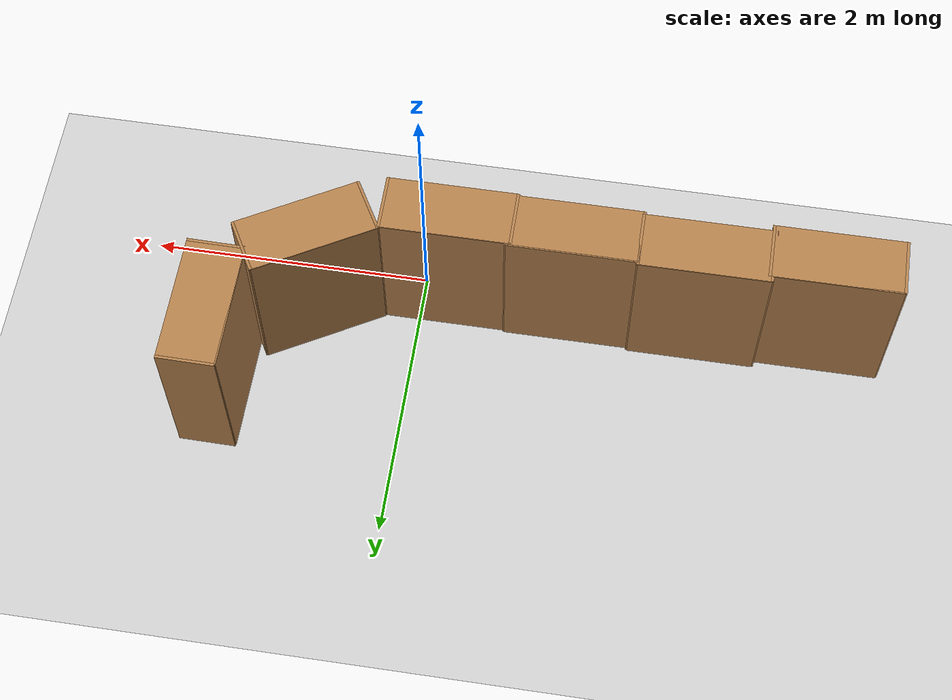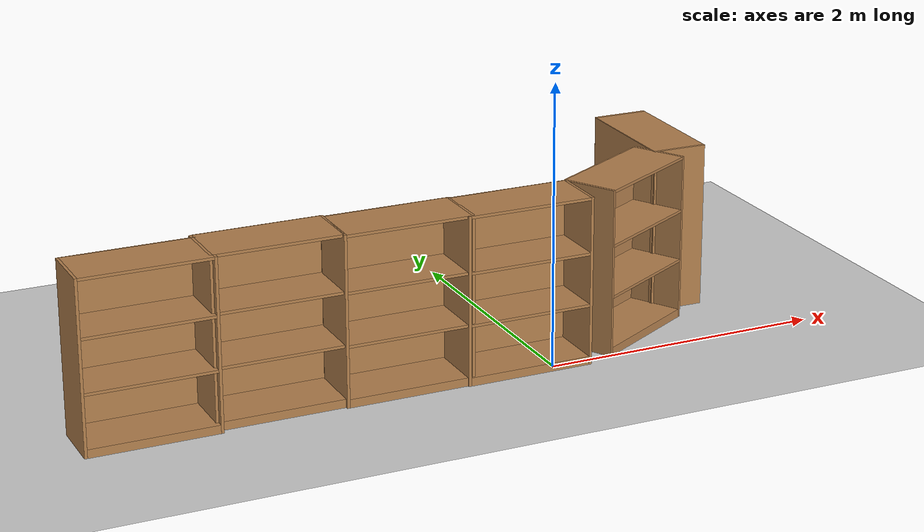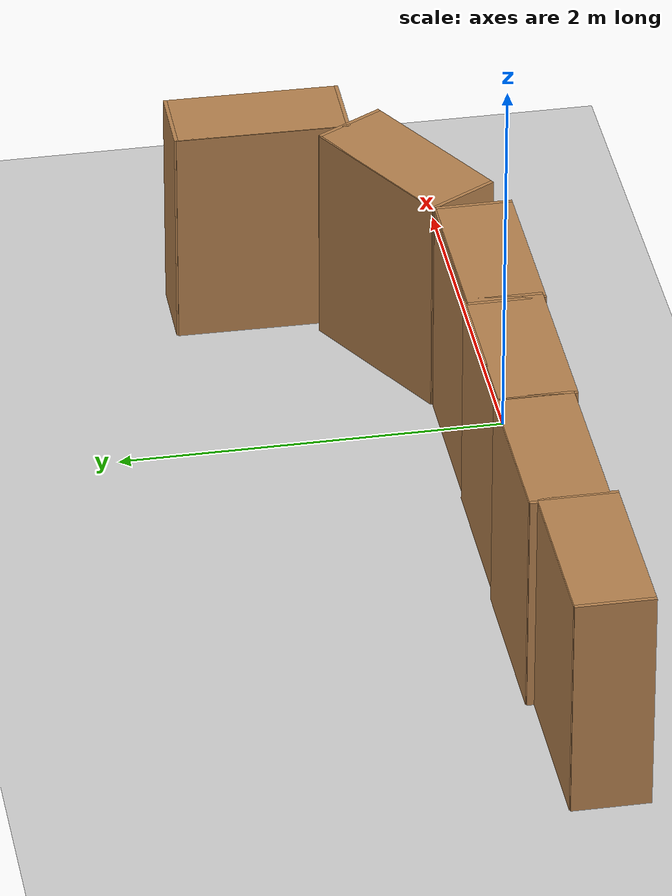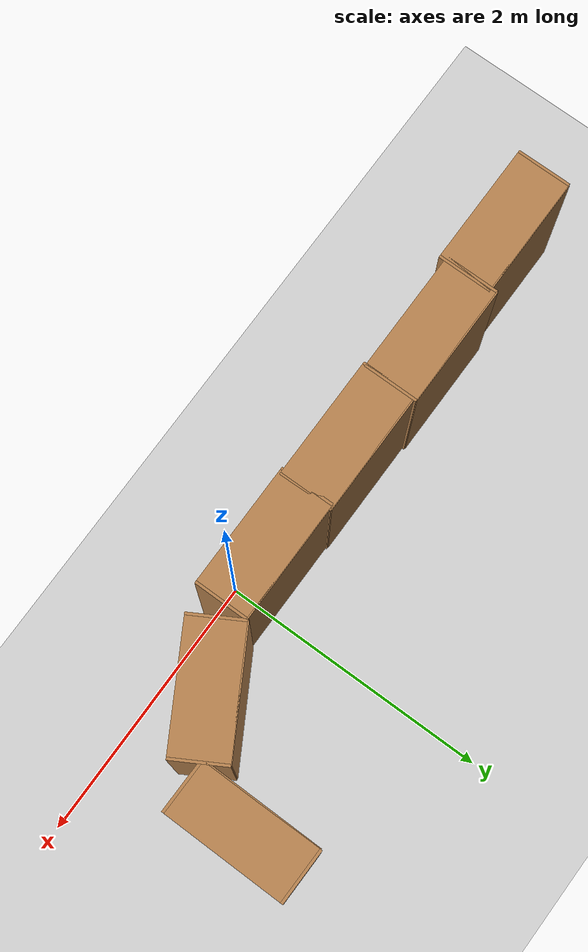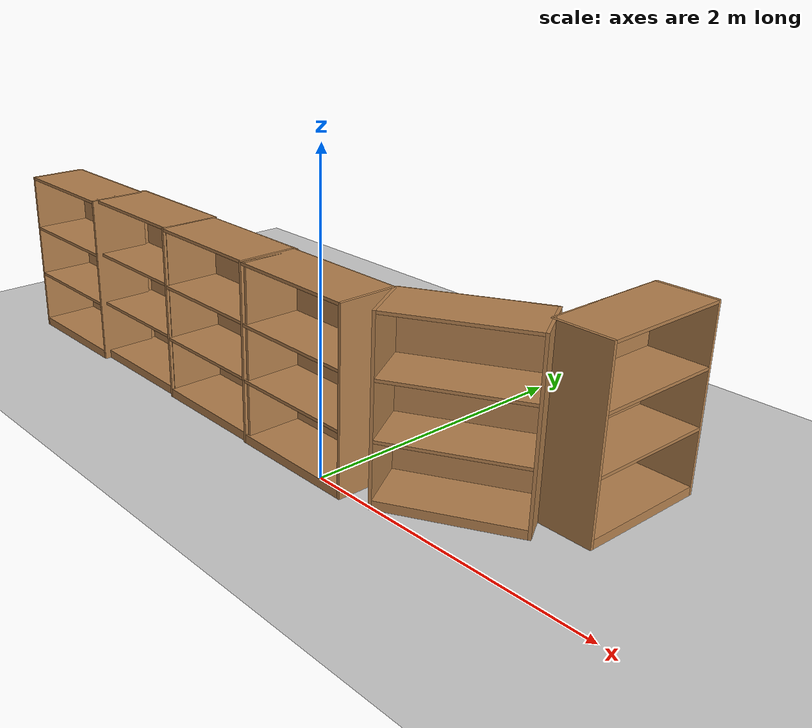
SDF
<sdf version="1.4">
 <world name="default">
  <model name="ground_plane">
   <static>1</static>
   <link name="link">
    <collision name="collision">
     <geometry><plane><normal>0 0 1</normal><size>100 100</size></plane></geometry>
     <surface><friction><ode><mu>100</mu><mu2>50</mu2></ode></friction></surface>
    </collision>
    <visual name="visual">
     <cast_shadows>0</cast_shadows>
     <geometry><plane><normal>0 0 1</normal><size>100 100</size></plane></geometry>
     <material>
      <script><uri>file://media/materials/scripts/gazebo.material</uri><name>Gazebo/Grey</name></script>
     </material>
    </visual>
    <velocity_decay><linear>0</linear><angular>0</angular></velocity_decay>
   </link>
  </model>
  <model name="bookshelf">
   <static>1</static>
   <link name="link">
    <inertial><mass>1</mass></inertial>
    <collision name="back">
     <pose>0 0.005 0.6 0 -0 0</pose>
     <geometry><box><size>0.9 0.01 1.2</size></box></geometry>
    </collision>
    <visual name="visual1">
     <pose>0 0.005 0.6 0 -0 0</pose>
     <geometry><box><size>0.9 0.01 1.2</size></box></geometry>
     <material>
      <script><uri>file://media/materials/scripts/gazebo.material</uri><name>Gazebo/Wood</name></script>
     </material>
    </visual>
    <collision name="left_side">
     <pose>0.45 -0.195 0.6 0 -0 0</pose>
     <geometry><box><size>0.02 0.4 1.2</size></box></geometry>
    </collision>
    <visual name="visual2">
     <pose>0.45 -0.195 0.6 0 -0 0</pose>
     <geometry><box><size>0.02 0.4 1.2</size></box></geometry>
     <material>
      <script><uri>file://media/materials/scripts/gazebo.material</uri><name>Gazebo/Wood</name></script>
     </material>
    </visual>
    <collision name="right_side">
     <pose>-0.45 -0.195 0.6 0 -0 0</pose>
     <geometry><box><size>0.02 0.4 1.2</size></box></geometry>
    </collision>
    <visual name="visual3">
     <pose>-0.45 -0.195 0.6 0 -0 0</pose>
     <geometry><box><size>0.02 0.4 1.2</size></box></geometry>
     <material>
      <script><uri>file://media/materials/scripts/gazebo.material</uri><name>Gazebo/Wood</name></script>
     </material>
    </visual>
    <collision name="bottom">
     <pose>0 -0.195 0.03 0 -0 0</pose>
     <geometry><box><size>0.88 0.4 0.06</size></box></geometry>
    </collision>
    <visual name="visual4">
     <pose>0 -0.195 0.03 0 -0 0</pose>
     <geometry><box><size>0.88 0.4 0.06</size></box></geometry>
     <material>
      <script><uri>file://media/materials/scripts/gazebo.material</uri><name>Gazebo/Wood</name></script>
     </material>
    </visual>
    <collision name="top">
     <pose>0 -0.195 1.19 0 -0 0</pose>
     <geometry><box><size>0.88 0.4 0.02</size></box></geometry>
    </collision>
    <visual name="visual5">
     <pose>0 -0.195 1.19 0 -0 0</pose>
     <geometry><box><size>0.88 0.4 0.02</size></box></geometry>
     <material>
      <script><uri>file://media/materials/scripts/gazebo.material</uri><name>Gazebo/Wood</name></script>
     </material>
    </visual>
    <collision name="low_shelf">
     <pose>0 -0.195 0.43 0 -0 0</pose>
     <geometry><box><size>0.88 0.4 0.02</size></box></geometry>
    </collision>
    <visual name="visual6">
     <pose>0 -0.195 0.43 0 -0 0</pose>
     <geometry><box><size>0.88 0.4 0.02</size></box></geometry>
     <material>
      <script><uri>file://media/materials/scripts/gazebo.material</uri><name>Gazebo/Wood</name></script>
     </material>
    </visual>
    <collision name="high_shelf">
     <pose>0 -0.195 0.8 0 -0 0</pose>
     <geometry><box><size>0.88 0.4 0.02</size></box></geometry>
    </collision>
    <visual name="visual7">
     <pose>0 -0.195 0.8 0 -0 0</pose>
     <geometry><box><size>0.88 0.4 0.02</size></box></geometry>
     <material>
      <script><uri>file://media/materials/scripts/gazebo.material</uri><name>Gazebo/Wood</name></script>
     </material>
    </visual>
    <velocity_decay><linear>0</linear><angular>0</angular></velocity_decay>
   </link>
   <pose>-2.84726 0.305303 0 0 -0 0</pose>
  </model>
  <model name="bookshelf_0">
   <static>1</static>
   <link name="link">
    <inertial><mass>1</mass></inertial>
    <collision name="back">
     <pose>0 0.005 0.6 0 -0 0</pose>
     <geometry><box><size>0.9 0.01 1.2</size></box></geometry>
    </collision>
    <visual name="visual1">
     <pose>0 0.005 0.6 0 -0 0</pose>
     <geometry><box><size>0.9 0.01 1.2</size></box></geometry>
     <material>
      <script><uri>file://media/materials/scripts/gazebo.material</uri><name>Gazebo/Wood</name></script>
     </material>
    </visual>
    <collision name="left_side">
     <pose>0.45 -0.195 0.6 0 -0 0</pose>
     <geometry><box><size>0.02 0.4 1.2</size></box></geometry>
    </collision>
    <visual name="visual2">
     <pose>0.45 -0.195 0.6 0 -0 0</pose>
     <geometry><box><size>0.02 0.4 1.2</size></box></geometry>
     <material>
      <script><uri>file://media/materials/scripts/gazebo.material</uri><name>Gazebo/Wood</name></script>
     </material>
    </visual>
    <collision name="right_side">
     <pose>-0.45 -0.195 0.6 0 -0 0</pose>
     <geometry><box><size>0.02 0.4 1.2</size></box></geometry>
    </collision>
    <visual name="visual3">
     <pose>-0.45 -0.195 0.6 0 -0 0</pose>
     <geometry><box><size>0.02 0.4 1.2</size></box></geometry>
     <material>
      <script><uri>file://media/materials/scripts/gazebo.material</uri><name>Gazebo/Wood</name></script>
     </material>
    </visual>
    <collision name="bottom">
     <pose>0 -0.195 0.03 0 -0 0</pose>
     <geometry><box><size>0.88 0.4 0.06</size></box></geometry>
    </collision>
    <visual name="visual4">
     <pose>0 -0.195 0.03 0 -0 0</pose>
     <geometry><box><size>0.88 0.4 0.06</size></box></geometry>
     <material>
      <script><uri>file://media/materials/scripts/gazebo.material</uri><name>Gazebo/Wood</name></script>
     </material>
    </visual>
    <collision name="top">
     <pose>0 -0.195 1.19 0 -0 0</pose>
     <geometry><box><size>0.88 0.4 0.02</size></box></geometry>
    </collision>
    <visual name="visual5">
     <pose>0 -0.195 1.19 0 -0 0</pose>
     <geometry><box><size>0.88 0.4 0.02</size></box></geometry>
     <material>
      <script><uri>file://media/materials/scripts/gazebo.material</uri><name>Gazebo/Wood</name></script>
     </material>
    </visual>
    <collision name="low_shelf">
     <pose>0 -0.195 0.43 0 -0 0</pose>
     <geometry><box><size>0.88 0.4 0.02</size></box></geometry>
    </collision>
    <visual name="visual6">
     <pose>0 -0.195 0.43 0 -0 0</pose>
     <geometry><box><size>0.88 0.4 0.02</size></box></geometry>
     <material>
      <script><uri>file://media/materials/scripts/gazebo.material</uri><name>Gazebo/Wood</name></script>
     </material>
    </visual>
    <collision name="high_shelf">
     <pose>0 -0.195 0.8 0 -0 0</pose>
     <geometry><box><size>0.88 0.4 0.02</size></box></geometry>
    </collision>
    <visual name="visual7">
     <pose>0 -0.195 0.8 0 -0 0</pose>
     <geometry><box><size>0.88 0.4 0.02</size></box></geometry>
     <material>
      <script><uri>file://media/materials/scripts/gazebo.material</uri><name>Gazebo/Wood</name></script>
     </material>
    </visual>
    <velocity_decay><linear>0</linear><angular>0</angular></velocity_decay>
   </link>
   <pose>-1.96662 0.347335 0 0 -0 0</pose>
  </model>
  <model name="bookshelf_1">
   <static>1</static>
   <link name="link">
    <inertial><mass>1</mass></inertial>
    <collision name="back">
     <pose>0 0.005 0.6 0 -0 0</pose>
     <geometry><box><size>0.9 0.01 1.2</size></box></geometry>
    </collision>
    <visual name="visual1">
     <pose>0 0.005 0.6 0 -0 0</pose>
     <geometry><box><size>0.9 0.01 1.2</size></box></geometry>
     <material>
      <script><uri>file://media/materials/scripts/gazebo.material</uri><name>Gazebo/Wood</name></script>
     </material>
    </visual>
    <collision name="left_side">
     <pose>0.45 -0.195 0.6 0 -0 0</pose>
     <geometry><box><size>0.02 0.4 1.2</size></box></geometry>
    </collision>
    <visual name="visual2">
     <pose>0.45 -0.195 0.6 0 -0 0</pose>
     <geometry><box><size>0.02 0.4 1.2</size></box></geometry>
     <material>
      <script><uri>file://media/materials/scripts/gazebo.material</uri><name>Gazebo/Wood</name></script>
     </material>
    </visual>
    <collision name="right_side">
     <pose>-0.45 -0.195 0.6 0 -0 0</pose>
     <geometry><box><size>0.02 0.4 1.2</size></box></geometry>
    </collision>
    <visual name="visual3">
     <pose>-0.45 -0.195 0.6 0 -0 0</pose>
     <geometry><box><size>0.02 0.4 1.2</size></box></geometry>
     <material>
      <script><uri>file://media/materials/scripts/gazebo.material</uri><name>Gazebo/Wood</name></script>
     </material>
    </visual>
    <collision name="bottom">
     <pose>0 -0.195 0.03 0 -0 0</pose>
     <geometry><box><size>0.88 0.4 0.06</size></box></geometry>
    </collision>
    <visual name="visual4">
     <pose>0 -0.195 0.03 0 -0 0</pose>
     <geometry><box><size>0.88 0.4 0.06</size></box></geometry>
     <material>
      <script><uri>file://media/materials/scripts/gazebo.material</uri><name>Gazebo/Wood</name></script>
     </material>
    </visual>
    <collision name="top">
     <pose>0 -0.195 1.19 0 -0 0</pose>
     <geometry><box><size>0.88 0.4 0.02</size></box></geometry>
    </collision>
    <visual name="visual5">
     <pose>0 -0.195 1.19 0 -0 0</pose>
     <geometry><box><size>0.88 0.4 0.02</size></box></geometry>
     <material>
      <script><uri>file://media/materials/scripts/gazebo.material</uri><name>Gazebo/Wood</name></script>
     </material>
    </visual>
    <collision name="low_shelf">
     <pose>0 -0.195 0.43 0 -0 0</pose>
     <geometry><box><size>0.88 0.4 0.02</size></box></geometry>
    </collision>
    <visual name="visual6">
     <pose>0 -0.195 0.43 0 -0 0</pose>
     <geometry><box><size>0.88 0.4 0.02</size></box></geometry>
     <material>
      <script><uri>file://media/materials/scripts/gazebo.material</uri><name>Gazebo/Wood</name></script>
     </material>
    </visual>
    <collision name="high_shelf">
     <pose>0 -0.195 0.8 0 -0 0</pose>
     <geometry><box><size>0.88 0.4 0.02</size></box></geometry>
    </collision>
    <visual name="visual7">
     <pose>0 -0.195 0.8 0 -0 0</pose>
     <geometry><box><size>0.88 0.4 0.02</size></box></geometry>
     <material>
      <script><uri>file://media/materials/scripts/gazebo.material</uri><name>Gazebo/Wood</name></script>
     </material>
    </visual>
    <velocity_decay><linear>0</linear><angular>0</angular></velocity_decay>
   </link>
   <pose>-1.07116 0.328228 0 0 -0 0</pose>
  </model>
  <model name="bookshelf_2">
   <static>1</static>
   <link name="link">
    <inertial><mass>1</mass></inertial>
    <collision name="back">
     <pose>0 0.005 0.6 0 -0 0</pose>
     <geometry><box><size>0.9 0.01 1.2</size></box></geometry>
    </collision>
    <visual name="visual1">
     <pose>0 0.005 0.6 0 -0 0</pose>
     <geometry><box><size>0.9 0.01 1.2</size></box></geometry>
     <material>
      <script><uri>file://media/materials/scripts/gazebo.material</uri><name>Gazebo/Wood</name></script>
     </material>
    </visual>
    <collision name="left_side">
     <pose>0.45 -0.195 0.6 0 -0 0</pose>
     <geometry><box><size>0.02 0.4 1.2</size></box></geometry>
    </collision>
    <visual name="visual2">
     <pose>0.45 -0.195 0.6 0 -0 0</pose>
     <geometry><box><size>0.02 0.4 1.2</size></box></geometry>
     <material>
      <script><uri>file://media/materials/scripts/gazebo.material</uri><name>Gazebo/Wood</name></script>
     </material>
    </visual>
    <collision name="right_side">
     <pose>-0.45 -0.195 0.6 0 -0 0</pose>
     <geometry><box><size>0.02 0.4 1.2</size></box></geometry>
    </collision>
    <visual name="visual3">
     <pose>-0.45 -0.195 0.6 0 -0 0</pose>
     <geometry><box><size>0.02 0.4 1.2</size></box></geometry>
     <material>
      <script><uri>file://media/materials/scripts/gazebo.material</uri><name>Gazebo/Wood</name></script>
     </material>
    </visual>
    <collision name="bottom">
     <pose>0 -0.195 0.03 0 -0 0</pose>
     <geometry><box><size>0.88 0.4 0.06</size></box></geometry>
    </collision>
    <visual name="visual4">
     <pose>0 -0.195 0.03 0 -0 0</pose>
     <geometry><box><size>0.88 0.4 0.06</size></box></geometry>
     <material>
      <script><uri>file://media/materials/scripts/gazebo.material</uri><name>Gazebo/Wood</name></script>
     </material>
    </visual>
    <collision name="top">
     <pose>0 -0.195 1.19 0 -0 0</pose>
     <geometry><box><size>0.88 0.4 0.02</size></box></geometry>
    </collision>
    <visual name="visual5">
     <pose>0 -0.195 1.19 0 -0 0</pose>
     <geometry><box><size>0.88 0.4 0.02</size></box></geometry>
     <material>
      <script><uri>file://media/materials/scripts/gazebo.material</uri><name>Gazebo/Wood</name></script>
     </material>
    </visual>
    <collision name="low_shelf">
     <pose>0 -0.195 0.43 0 -0 0</pose>
     <geometry><box><size>0.88 0.4 0.02</size></box></geometry>
    </collision>
    <visual name="visual6">
     <pose>0 -0.195 0.43 0 -0 0</pose>
     <geometry><box><size>0.88 0.4 0.02</size></box></geometry>
     <material>
      <script><uri>file://media/materials/scripts/gazebo.material</uri><name>Gazebo/Wood</name></script>
     </material>
    </visual>
    <collision name="high_shelf">
     <pose>0 -0.195 0.8 0 -0 0</pose>
     <geometry><box><size>0.88 0.4 0.02</size></box></geometry>
    </collision>
    <visual name="visual7">
     <pose>0 -0.195 0.8 0 -0 0</pose>
     <geometry><box><size>0.88 0.4 0.02</size></box></geometry>
     <material>
      <script><uri>file://media/materials/scripts/gazebo.material</uri><name>Gazebo/Wood</name></script>
     </material>
    </visual>
    <velocity_decay><linear>0</linear><angular>0</angular></velocity_decay>
   </link>
   <pose>-0.202462 0.315464 0 0 -0 0</pose>
  </model>
  <model name="bookshelf_3">
   <static>1</static>
   <link name="link">
    <inertial><mass>1</mass></inertial>
    <collision name="back">
     <pose>0 0.005 0.6 0 -0 0</pose>
     <geometry><box><size>0.9 0.01 1.2</size></box></geometry>
    </collision>
    <visual name="visual1">
     <pose>0 0.005 0.6 0 -0 0</pose>
     <geometry><box><size>0.9 0.01 1.2</size></box></geometry>
     <material>
      <script><uri>file://media/materials/scripts/gazebo.material</uri><name>Gazebo/Wood</name></script>
     </material>
    </visual>
    <collision name="left_side">
     <pose>0.45 -0.195 0.6 0 -0 0</pose>
     <geometry><box><size>0.02 0.4 1.2</size></box></geometry>
    </collision>
    <visual name="visual2">
     <pose>0.45 -0.195 0.6 0 -0 0</pose>
     <geometry><box><size>0.02 0.4 1.2</size></box></geometry>
     <material>
      <script><uri>file://media/materials/scripts/gazebo.material</uri><name>Gazebo/Wood</name></script>
     </material>
    </visual>
    <collision name="right_side">
     <pose>-0.45 -0.195 0.6 0 -0 0</pose>
     <geometry><box><size>0.02 0.4 1.2</size></box></geometry>
    </collision>
    <visual name="visual3">
     <pose>-0.45 -0.195 0.6 0 -0 0</pose>
     <geometry><box><size>0.02 0.4 1.2</size></box></geometry>
     <material>
      <script><uri>file://media/materials/scripts/gazebo.material</uri><name>Gazebo/Wood</name></script>
     </material>
    </visual>
    <collision name="bottom">
     <pose>0 -0.195 0.03 0 -0 0</pose>
     <geometry><box><size>0.88 0.4 0.06</size></box></geometry>
    </collision>
    <visual name="visual4">
     <pose>0 -0.195 0.03 0 -0 0</pose>
     <geometry><box><size>0.88 0.4 0.06</size></box></geometry>
     <material>
      <script><uri>file://media/materials/scripts/gazebo.material</uri><name>Gazebo/Wood</name></script>
     </material>
    </visual>
    <collision name="top">
     <pose>0 -0.195 1.19 0 -0 0</pose>
     <geometry><box><size>0.88 0.4 0.02</size></box></geometry>
    </collision>
    <visual name="visual5">
     <pose>0 -0.195 1.19 0 -0 0</pose>
     <geometry><box><size>0.88 0.4 0.02</size></box></geometry>
     <material>
      <script><uri>file://media/materials/scripts/gazebo.material</uri><name>Gazebo/Wood</name></script>
     </material>
    </visual>
    <collision name="low_shelf">
     <pose>0 -0.195 0.43 0 -0 0</pose>
     <geometry><box><size>0.88 0.4 0.02</size></box></geometry>
    </collision>
    <visual name="visual6">
     <pose>0 -0.195 0.43 0 -0 0</pose>
     <geometry><box><size>0.88 0.4 0.02</size></box></geometry>
     <material>
      <script><uri>file://media/materials/scripts/gazebo.material</uri><name>Gazebo/Wood</name></script>
     </material>
    </visual>
    <collision name="high_shelf">
     <pose>0 -0.195 0.8 0 -0 0</pose>
     <geometry><box><size>0.88 0.4 0.02</size></box></geometry>
    </collision>
    <visual name="visual7">
     <pose>0 -0.195 0.8 0 -0 0</pose>
     <geometry><box><size>0.88 0.4 0.02</size></box></geometry>
     <material>
      <script><uri>file://media/materials/scripts/gazebo.material</uri><name>Gazebo/Wood</name></script>
     </material>
    </visual>
    <velocity_decay><linear>0</linear><angular>0</angular></velocity_decay>
   </link>
   <pose>0.640669 0.550487 0 0 -0 0.52</pose>
  </model>
  <model name="bookshelf_19">
   <static>1</static>
   <link name="link">
    <inertial><mass>1</mass></inertial>
    <collision name="back">
     <pose>0 0.005 0.6 0 -0 0</pose>
     <geometry><box><size>0.9 0.01 1.2</size></box></geometry>
    </collision>
    <visual name="visual1">
     <pose>0 0.005 0.6 0 -0 0</pose>
     <geometry><box><size>0.9 0.01 1.2</size></box></geometry>
     <material>
      <script><uri>file://media/materials/scripts/gazebo.material</uri><name>Gazebo/Wood</name></script>
     </material>
    </visual>
    <collision name="left_side">
     <pose>0.45 -0.195 0.6 0 -0 0</pose>
     <geometry><box><size>0.02 0.4 1.2</size></box></geometry>
    </collision>
    <visual name="visual2">
     <pose>0.45 -0.195 0.6 0 -0 0</pose>
     <geometry><box><size>0.02 0.4 1.2</size></box></geometry>
     <material>
      <script><uri>file://media/materials/scripts/gazebo.material</uri><name>Gazebo/Wood</name></script>
     </material>
    </visual>
    <collision name="right_side">
     <pose>-0.45 -0.195 0.6 0 -0 0</pose>
     <geometry><box><size>0.02 0.4 1.2</size></box></geometry>
    </collision>
    <visual name="visual3">
     <pose>-0.45 -0.195 0.6 0 -0 0</pose>
     <geometry><box><size>0.02 0.4 1.2</size></box></geometry>
     <material>
      <script><uri>file://media/materials/scripts/gazebo.material</uri><name>Gazebo/Wood</name></script>
     </material>
    </visual>
    <collision name="bottom">
     <pose>0 -0.195 0.03 0 -0 0</pose>
     <geometry><box><size>0.88 0.4 0.06</size></box></geometry>
    </collision>
    <visual name="visual4">
     <pose>0 -0.195 0.03 0 -0 0</pose>
     <geometry><box><size>0.88 0.4 0.06</size></box></geometry>
     <material>
      <script><uri>file://media/materials/scripts/gazebo.material</uri><name>Gazebo/Wood</name></script>
     </material>
    </visual>
    <collision name="top">
     <pose>0 -0.195 1.19 0 -0 0</pose>
     <geometry><box><size>0.88 0.4 0.02</size></box></geometry>
    </collision>
    <visual name="visual5">
     <pose>0 -0.195 1.19 0 -0 0</pose>
     <geometry><box><size>0.88 0.4 0.02</size></box></geometry>
     <material>
      <script><uri>file://media/materials/scripts/gazebo.material</uri><name>Gazebo/Wood</name></script>
     </material>
    </visual>
    <collision name="low_shelf">
     <pose>0 -0.195 0.43 0 -0 0</pose>
     <geometry><box><size>0.88 0.4 0.02</size></box></geometry>
    </collision>
    <visual name="visual6">
     <pose>0 -0.195 0.43 0 -0 0</pose>
     <geometry><box><size>0.88 0.4 0.02</size></box></geometry>
     <material>
      <script><uri>file://media/materials/scripts/gazebo.material</uri><name>Gazebo/Wood</name></script>
     </material>
    </visual>
    <collision name="high_shelf">
     <pose>0 -0.195 0.8 0 -0 0</pose>
     <geometry><box><size>0.88 0.4 0.02</size></box></geometry>
    </collision>
    <visual name="visual7">
     <pose>0 -0.195 0.8 0 -0 0</pose>
     <geometry><box><size>0.88 0.4 0.02</size></box></geometry>
     <material>
      <script><uri>file://media/materials/scripts/gazebo.material</uri><name>Gazebo/Wood</name></script>
     </material>
    </visual>
    <velocity_decay><linear>0</linear><angular>0</angular></velocity_decay>
   </link>
   <pose>1.10917 1.06589 0 0 -0 1.56</pose>
  </model>
 </world>
</sdf>
